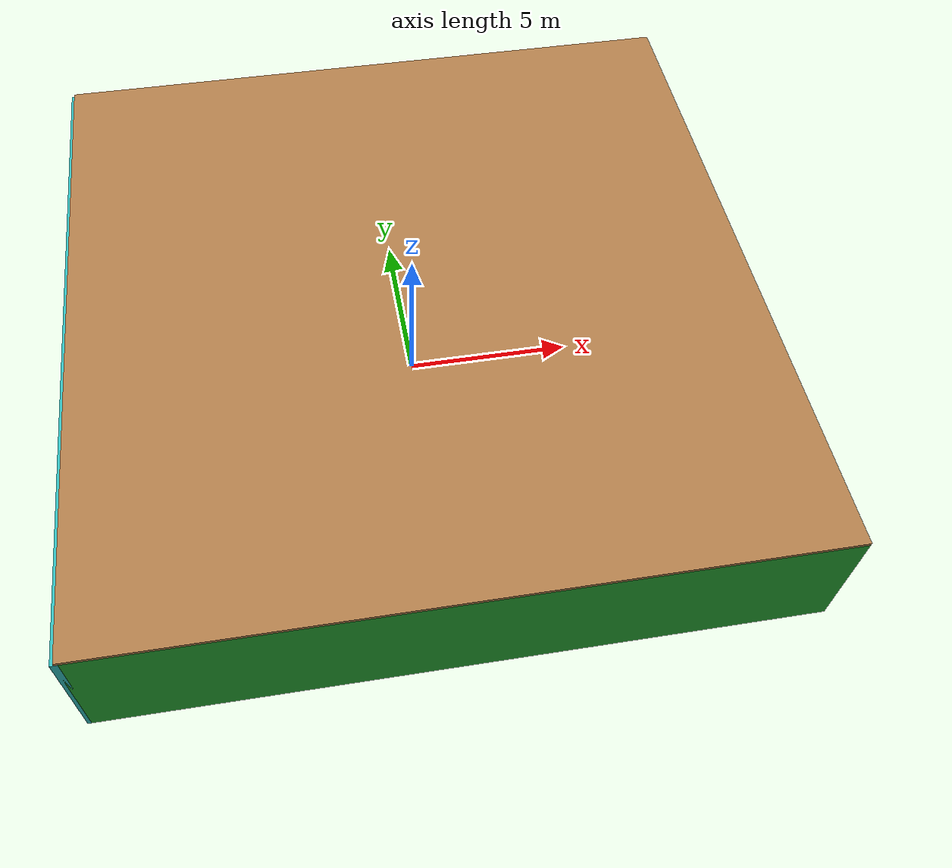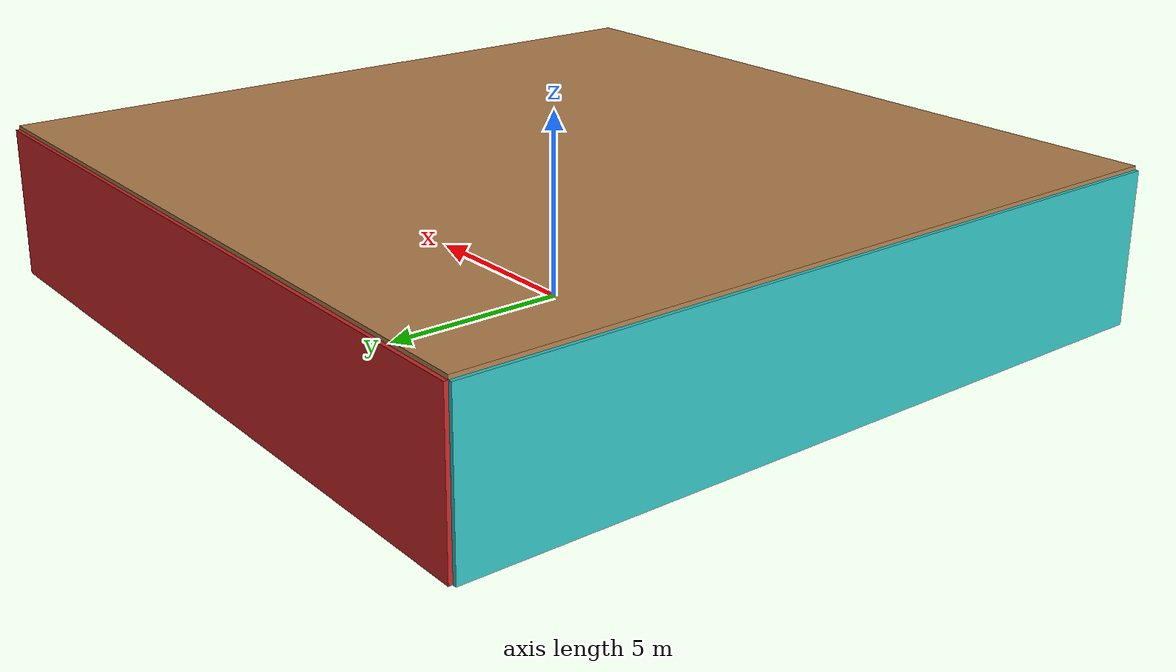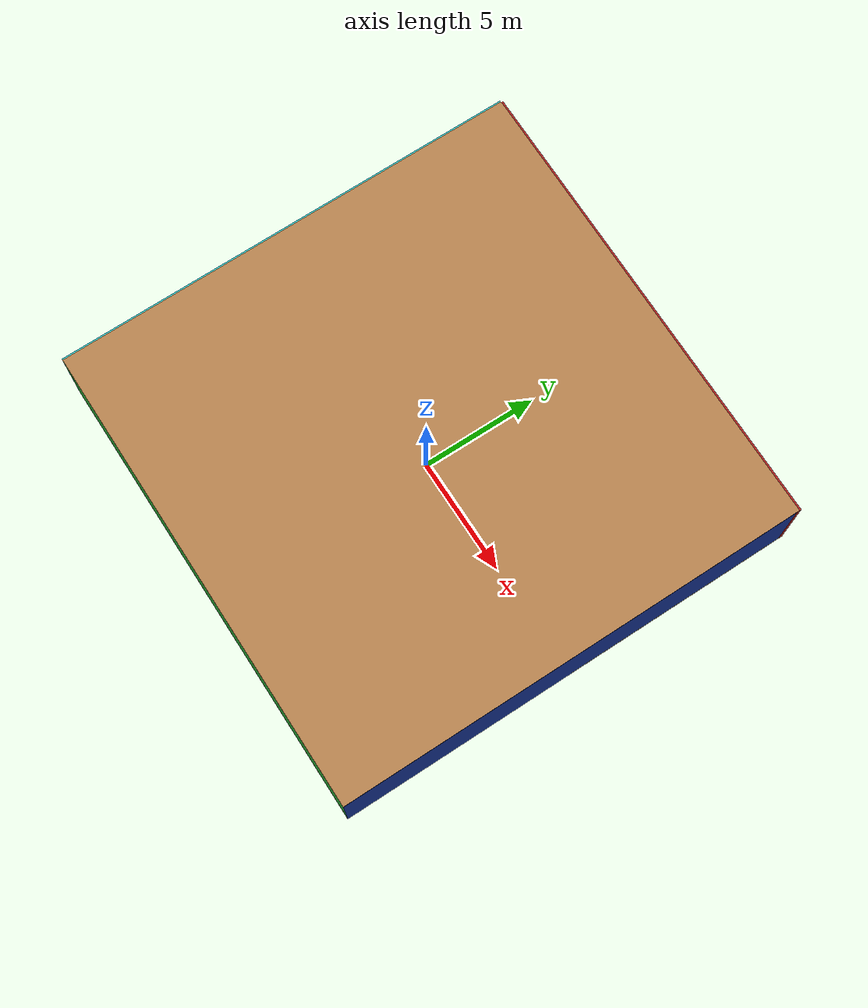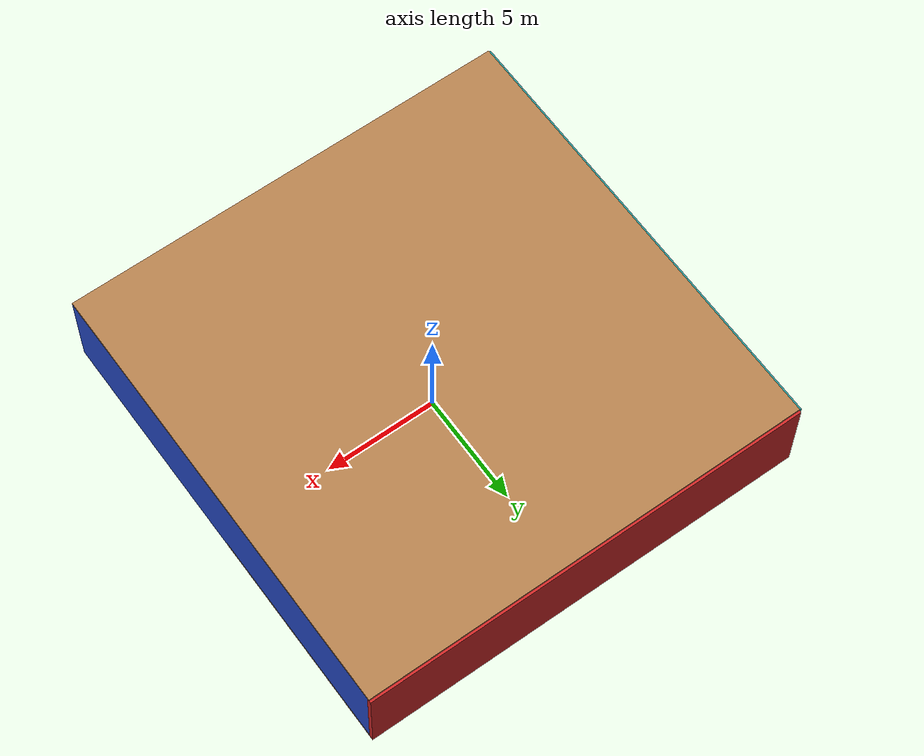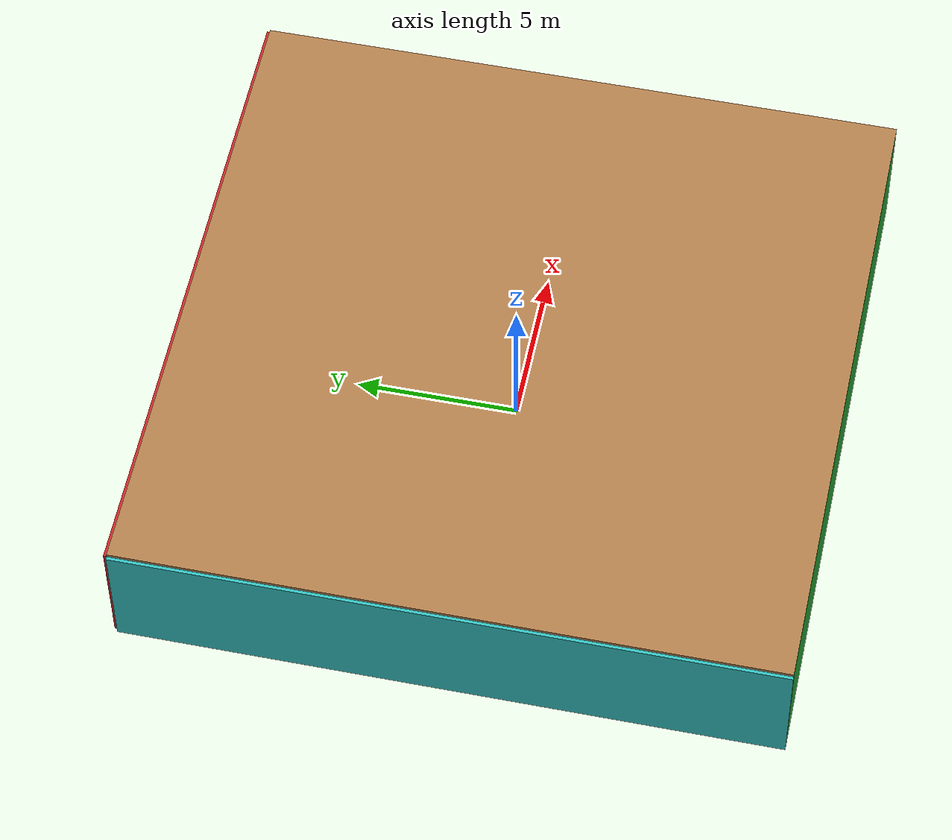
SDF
<sdf version="1.4">
 <world name="default">
  <physics type="ode">
   <max_step_size>0.001</max_step_size>
   <real_time_factor>1</real_time_factor>
   <real_time_update_rate>1000</real_time_update_rate>
   <gravity>0 0 -9.8</gravity>
  </physics>
  <scene><ambient>0.4 0.4 0.4 1</ambient><background>0.7 0.7 0.7 1</background><shadows>1</shadows></scene>
  <model name="Surrounding">
   <static>1</static>
   <link name="Ceiling">
    <collision name="Ceiling_Collision"><geometry><box><size>20 20 0.1</size></box></geometry></collision>
    <visual name="Ceiling_Visual">
     <geometry><box><size>20 20 0.1</size></box></geometry>
     <material>
      <script><uri>file://media/materials/scripts/gazebo.material</uri><name>Gazebo/WoodPallet</name></script>
     </material>
    </visual>
    <pose>0 0 4.05 0 0 0</pose>
   </link>
   <link name="Wall_South">
    <collision name="Wall_South_Collision">
     <geometry><box><size>20 0 4</size></box></geometry>
     <pose>0 0 2 0 -0 0</pose>
    </collision>
    <visual name="Wall_South_Visual">
     <pose>0 0 2 0 -0 0</pose>
     <geometry><box><size>20 0 4</size></box></geometry>
     <material>
      <script><uri>file://media/materials/scripts/gazebo.material</uri><name>Gazebo/GreenGlow</name></script>
     </material>
    </visual>
    <velocity_decay><linear>0</linear><angular>0</angular></velocity_decay>
    <pose>0 -10 0 0 -0 0</pose>
   </link>
   <link name="Wall_East">
    <collision name="Wall_21_Collision">
     <geometry><box><size>20 0 4</size></box></geometry>
     <pose>0 0 2 0 -0 0</pose>
    </collision>
    <visual name="Wall_21_Visual">
     <pose>0 0 2 0 -0 0</pose>
     <geometry><box><size>20 0 4</size></box></geometry>
     <material>
      <script><uri>file://media/materials/scripts/gazebo.material</uri><name>Gazebo/Blue</name></script>
     </material>
    </visual>
    <velocity_decay><linear>0</linear><angular>0</angular></velocity_decay>
    <pose>10 0 0 0 -0 1.5708</pose>
   </link>
   <link name="Wall_North">
    <collision name="Wall_22_Collision">
     <geometry><box><size>20 0.2 4</size></box></geometry>
     <pose>0 0 2 0 -0 0</pose>
    </collision>
    <visual name="Wall_22_Visual">
     <pose>0 0 2 0 -0 0</pose>
     <geometry><box><size>20 0.2 4</size></box></geometry>
     <material>
      <script><uri>file://media/materials/scripts/gazebo.material</uri><name>Gazebo/RedBright</name></script>
     </material>
    </visual>
    <velocity_decay><linear>0</linear><angular>0</angular></velocity_decay>
    <pose>0 10 0 0 -0 0</pose>
   </link>
   <link name="Wall_West">
    <collision name="Wall_23_Collision">
     <geometry><box><size>20 0.2 4</size></box></geometry>
     <pose>0 0 2 0 -0 0</pose>
    </collision>
    <visual name="Wall_23_Visual">
     <pose>0 0 2 0 -0 0</pose>
     <geometry><box><size>20 0.2 4</size></box></geometry>
     <material>
      <script><uri>file://media/materials/scripts/gazebo.material</uri><name>Gazebo/TurquoiseGlow</name></script>
     </material>
    </visual>
    <velocity_decay><linear>0</linear><angular>0</angular></velocity_decay>
    <pose>-10 0 0 0 0 -1.5708</pose>
   </link>
   <link name="Ground_link">
    <collision name="collision">
     <pose>0 0 .05 0 -0 0</pose>
     <geometry><box><size>20 20 0.1</size></box></geometry>
    </collision>
    <visual name="visual">
     <pose>0 0 .05 0 -0 0</pose>
     <geometry><box><size>20 20 0.1</size></box></geometry>
     <material>
      <script><uri>file://media/materials/scripts/gazebo.material</uri><name>Gazebo/Wood</name></script>
     </material>
    </visual>
   </link>
   <static>1</static>
  </model>
  <spherical_coordinates>
   <surface_model>EARTH_WGS84</surface_model>
   <latitude_deg>0</latitude_deg>
   <longitude_deg>0</longitude_deg>
   <elevation>0</elevation>
   <heading_deg>0</heading_deg>
  </spherical_coordinates>
  <light name="lightball_0" type="diffuse">
   <diffuse>0.8 0.8 0.8 1</diffuse>
   <specular>0.2 0.2 0.2 1</specular>
   <attenuation>
    <range>100</range>
    <constant>0.7</constant>
    <linear>0.01</linear>
    <quadratic>0.001</quadratic>
   </attenuation>
   <direction>-0.5 0.1 -0.9</direction>
   <pose>-9.92123071622 -0.13049234117 1.14473840753 0 0 0</pose>
  </light>
  <light name="lightball_1" type="diffuse">
   <diffuse>0.8 0.8 0.8 1</diffuse>
   <specular>0.2 0.2 0.2 1</specular>
   <attenuation>
    <range>100</range>
    <constant>0.7</constant>
    <linear>0.01</linear>
    <quadratic>0.001</quadratic>
   </attenuation>
   <direction>-0.5 0.1 -0.9</direction>
   <pose>-2.10224550437 -3.07381262814 1.92396213751 0 0 0</pose>
  </light>
  <light name="lightball_2" type="diffuse">
   <diffuse>0.8 0.8 0.8 1</diffuse>
   <specular>0.2 0.2 0.2 1</specular>
   <attenuation>
    <range>100</range>
    <constant>0.7</constant>
    <linear>0.01</linear>
    <quadratic>0.001</quadratic>
   </attenuation>
   <direction>-0.5 0.1 -0.9</direction>
   <pose>5.57946278457 -1.65649161096 2.46281136139 0 0 0</pose>
  </light>
  <light name="lightball_3" type="diffuse">
   <diffuse>0.8 0.8 0.8 1</diffuse>
   <specular>0.2 0.2 0.2 1</specular>
   <attenuation>
    <range>100</range>
    <constant>0.7</constant>
    <linear>0.01</linear>
    <quadratic>0.001</quadratic>
   </attenuation>
   <direction>-0.5 0.1 -0.9</direction>
   <pose>-9.86557273087 -7.44102615686 3.25372620985 0 0 0</pose>
  </light>
  <light name="lightball_4" type="diffuse">
   <diffuse>0.8 0.8 0.8 1</diffuse>
   <specular>0.2 0.2 0.2 1</specular>
   <attenuation>
    <range>100</range>
    <constant>0.7</constant>
    <linear>0.01</linear>
    <quadratic>0.001</quadratic>
   </attenuation>
   <direction>-0.5 0.1 -0.9</direction>
   <pose>-7.06744482187 -8.75103539131 1.86604029868 0 0 0</pose>
  </light>
  <light name="lightball_5" type="diffuse">
   <diffuse>0.8 0.8 0.8 1</diffuse>
   <specular>0.2 0.2 0.2 1</specular>
   <attenuation>
    <range>100</range>
    <constant>0.7</constant>
    <linear>0.01</linear>
    <quadratic>0.001</quadratic>
   </attenuation>
   <direction>-0.5 0.1 -0.9</direction>
   <pose>5.67608926996 5.18737458799 3.50181620465 0 0 0</pose>
  </light>
  <light name="lightball_6" type="diffuse">
   <diffuse>0.8 0.8 0.8 1</diffuse>
   <specular>0.2 0.2 0.2 1</specular>
   <attenuation>
    <range>100</range>
    <constant>0.7</constant>
    <linear>0.01</linear>
    <quadratic>0.001</quadratic>
   </attenuation>
   <direction>-0.5 0.1 -0.9</direction>
   <pose>0.951080659186 -8.77843440849 3.69506391399 0 0 0</pose>
  </light>
  <light name="lightball_7" type="diffuse">
   <diffuse>0.8 0.8 0.8 1</diffuse>
   <specular>0.2 0.2 0.2 1</specular>
   <attenuation>
    <range>100</range>
    <constant>0.7</constant>
    <linear>0.01</linear>
    <quadratic>0.001</quadratic>
   </attenuation>
   <direction>-0.5 0.1 -0.9</direction>
   <pose>-9.02401686456 -6.49323832827 1.82080944886 0 0 0</pose>
  </light>
  <light name="lightball_8" type="diffuse">
   <diffuse>0.8 0.8 0.8 1</diffuse>
   <specular>0.2 0.2 0.2 1</specular>
   <attenuation>
    <range>100</range>
    <constant>0.7</constant>
    <linear>0.01</linear>
    <quadratic>0.001</quadratic>
   </attenuation>
   <direction>-0.5 0.1 -0.9</direction>
   <pose>-9.47546874047 6.69240354108 0.637552723722 0 0 0</pose>
  </light>
  <light name="lightball_9" type="diffuse">
   <diffuse>0.8 0.8 0.8 1</diffuse>
   <specular>0.2 0.2 0.2 1</specular>
   <attenuation>
    <range>100</range>
    <constant>0.7</constant>
    <linear>0.01</linear>
    <quadratic>0.001</quadratic>
   </attenuation>
   <direction>-0.5 0.1 -0.9</direction>
   <pose>7.33728424957 -6.49381477794 3.83453737574 0 0 0</pose>
  </light>
  <light name="lightball_10" type="diffuse">
   <diffuse>0.8 0.8 0.8 1</diffuse>
   <specular>0.2 0.2 0.2 1</specular>
   <attenuation>
    <range>100</range>
    <constant>0.7</constant>
    <linear>0.01</linear>
    <quadratic>0.001</quadratic>
   </attenuation>
   <direction>-0.5 0.1 -0.9</direction>
   <pose>-0.68948403953 -8.22341948356 2.51918596307 0 0 0</pose>
  </light>
  <include><uri>model://table</uri><pose>-6.85202986284 -8.01586004801 0 0 0 2.78491388885</pose></include>
  <include><uri>model://cabinet</uri><pose>-3.80207432705 -7.72443747731 0 0 0 1.49398521687</pose></include>
  <include><uri>model://table</uri><pose>-4.56024921128 -3.51540371396 0 0 0 0.059162557432</pose></include>
  <include>
   <uri>model://textured_shapes</uri>
   <pose>0.93034670774 -1.56619604816 0 0 0 1.31169056558</pose>
  </include>
  <include>
   <uri>model://robocup_3Dsim_goal</uri>
   <pose>7.73585754941 -1.54532465265 0 0 0 3.04154679133</pose>
  </include>
  <include>
   <uri>model://textured_shapes</uri>
   <pose>8.17667506978 4.92671105286 0 0 0 0.00226090800069</pose>
  </include>
 </world>
</sdf>

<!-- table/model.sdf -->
<sdf version="1.5">
  <model name="table">
    <static>true</static>
    <link name="link">
      <collision name="surface">
        <pose>0 0 1.0 0 0 0</pose>
        <geometry>
          <box>
            <size>1.5 0.8 0.03</size>
          </box>
        </geometry>
        <surface>
          <friction>
            <ode>
              <mu>0.6</mu>
              <mu2>0.6</mu2>
            </ode>
          </friction>
        </surface>
      </collision>
      <visual name="visual1">
        <pose>0 0 1.0 0 0 0</pose>
        <geometry>
          <box>
            <size>1.5 0.8 0.03</size>
          </box>
        </geometry>
        <material>
          <script>
            <uri>model://media/materials/scripts/gazebo.material</uri>
            <name>Gazebo/Wood</name>
          </script>
        </material>
      </visual>
      <collision name="front_left_leg">
        <pose>0.68 0.38 0.5 0 0 0</pose>
        <geometry>
          <cylinder>
            <radius>0.02</radius>
            <length>1.0</length>
          </cylinder>
        </geometry>
      </collision>
      <visual name="front_left_leg">
        <pose>0.68 0.38 0.5 0 0 0</pose>
        <geometry>
          <cylinder>
            <radius>0.02</radius>
            <length>1.0</length>
          </cylinder>
        </geometry>
        <material>
          <script>
            <uri>model://media/materials/scripts/gazebo.material</uri>
            <name>Gazebo/Grey</name>
          </script>
        </material>
      </visual>
      <collision name="front_right_leg">
        <pose>0.68 -0.38 0.5 0 0 0</pose>
        <geometry>
          <cylinder>
            <radius>0.02</radius>
            <length>1.0</length>
          </cylinder>
        </geometry>
      </collision>
      <visual name="front_right_leg">
        <pose>0.68 -0.38 0.5 0 0 0</pose>
        <geometry>
          <cylinder>
            <radius>0.02</radius>
            <length>1.0</length>
          </cylinder>
        </geometry>
        <material>
          <script>
            <uri>model://media/materials/scripts/gazebo.material</uri>
            <name>Gazebo/Grey</name>
          </script>
        </material>
      </visual>
      <collision name="back_right_leg">
        <pose>-0.68 -0.38 0.5 0 0 0</pose>
        <geometry>
          <cylinder>
            <radius>0.02</radius>
            <length>1.0</length>
          </cylinder>
        </geometry>
      </collision>
      <visual name="back_right_leg">
        <pose>-0.68 -0.38 0.5 0 0 0</pose>
        <geometry>
          <cylinder>
            <radius>0.02</radius>
            <length>1.0</length>
          </cylinder>
        </geometry>
        <material>
          <script>
            <uri>model://media/materials/scripts/gazebo.material</uri>
            <name>Gazebo/Grey</name>
          </script>
        </material>
      </visual>
      <collision name="back_left_leg">
        <pose>-0.68 0.38 0.5 0 0 0</pose>
        <geometry>
          <cylinder>
            <radius>0.02</radius>
            <length>1.0</length>
          </cylinder>
        </geometry>
      </collision>
      <visual name="back_left_leg">
        <pose>-0.68 0.38 0.5 0 0 0</pose>
        <geometry>
          <cylinder>
            <radius>0.02</radius>
            <length>1.0</length>
          </cylinder>
        </geometry>
        <material>
          <script>
            <uri>model://media/materials/scripts/gazebo.material</uri>
            <name>Gazebo/Grey</name>
          </script>
        </material>
      </visual>
    </link>
  </model>
</sdf>

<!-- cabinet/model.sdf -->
<sdf version="1.5">
  <model name="cabinet">
    <static>true</static>
    <link name="cabinet_bottom_plate">
      <inertial>
        <pose>0 0 -1 0 0 0</pose>
        <inertia>
          <ixx>2.050000</ixx>
          <ixy>0</ixy>
          <ixz>0</ixz>
          <iyy>2.050000</iyy>
          <iyz>0</iyz>
          <izz>2.050000</izz>
        </inertia>
        <mass>25.000000</mass>
      </inertial>
      <collision name="cabinet_bottom_plate_geom">
        <pose>0 0 0.010000 0 0 0</pose>
        <geometry>
          <box>
            <size>0.450000 0.450000 0.020000</size>
          </box>
        </geometry>
      </collision>
      <visual name="cabinet_bottom_plate_geom_visual">
        <pose>0 0 0.010000 0 0 0</pose>
        <geometry>
          <box>
            <size>0.450000 0.450000 0.020000</size>
          </box>
        </geometry>
        <material>
          <script>
            <uri>model://media/materials/scripts/gazebo.material</uri>
            <name>Gazebo/Wood</name>
          </script>
        </material>
      </visual>
      <collision name="cabinet_bottom_plate_geom_cabinet_back_plate">
        <pose>0.235000 0 0.510000 0 0 0</pose>
        <geometry>
          <box>
            <size>0.020000 0.450000 1.020000</size>
          </box>
        </geometry>
      </collision>
      <visual name="cabinet_bottom_plate_geom_cabinet_back_plate_visual">
        <pose>0.235000 0 0.510000 0 0 0</pose>
        <geometry>
          <box>
            <size>0.020000 0.450000 1.020000</size>
          </box>
        </geometry>
        <material>
          <script>
            <uri>model://media/materials/scripts/gazebo.material</uri>
            <name>Gazebo/Wood</name>
          </script>
        </material>
      </visual>
      <collision name="cabinet_bottom_plate_geom_cabinet_left_plate">
        <pose>0 0.235000 0.510000 0 0 0</pose>
        <geometry>
          <box>
            <size>0.450000 0.020000 1.020000</size>
          </box>
        </geometry>
      </collision>
      <visual name="cabinet_bottom_plate_geom_cabinet_left_plate_visual">
        <pose>0 0.235000 0.510000 0 0 0</pose>
        <geometry>
          <box>
            <size>0.450000 0.020000 1.020000</size>
          </box>
        </geometry>
        <material>
          <script>
            <uri>model://media/materials/scripts/gazebo.material</uri>
            <name>Gazebo/Wood</name>
          </script>
        </material>
      </visual>
      <collision name="cabinet_bottom_plate_geom_cabinet_middle_plate">
        <pose>0 0 0.510000 0 0 0</pose>
        <geometry>
          <box>
            <size>0.450000 0.450000 0.020000</size>
          </box>
        </geometry>
      </collision>
      <visual name="cabinet_bottom_plate_geom_cabinet_middle_plate_visual">
        <pose>0 0 0.510000 0 0 0</pose>
        <geometry>
          <box>
            <size>0.450000 0.450000 0.020000</size>
          </box>
        </geometry>
        <material>
          <script>
            <uri>model://media/materials/scripts/gazebo.material</uri>
            <name>Gazebo/Wood</name>
          </script>
        </material>
      </visual>
      <collision name="cabinet_bottom_plate_geom_cabinet_right_plate">
        <pose>0 -0.235000 0.510000 0 0 0</pose>
        <geometry>
          <box>
            <size>0.450000 0.020000 1.020000</size>
          </box>
        </geometry>
      </collision>
      <visual name="cabinet_bottom_plate_geom_cabinet_right_plate_visual">
        <pose>0 -0.235000 0.510000 0 0 0</pose>
        <geometry>
          <box>
            <size>0.450000 0.020000 1.020000</size>
          </box>
        </geometry>
        <material>
          <script>
            <uri>model://media/materials/scripts/gazebo.material</uri>
            <name>Gazebo/Wood</name>
          </script>
        </material>
      </visual>
      <collision name="cabinet_bottom_plate_geom_cabinet_top_plate">
        <pose>0 0 1.010000 0 0 0</pose>
        <geometry>
          <box>
            <size>0.450000 0.450000 0.020000</size>
          </box>
        </geometry>
      </collision>
      <visual name="cabinet_bottom_plate_geom_cabinet_top_plate_visual">
        <pose>0 0 1.010000 0 0 0</pose>
        <geometry>
          <box>
            <size>0.450000 0.450000 0.020000</size>
          </box>
        </geometry>
        <material>
          <script>
            <uri>model://media/materials/scripts/gazebo.material</uri>
            <name>Gazebo/Wood</name>
          </script>
        </material>
      </visual>
    </link>
  </model>
</sdf>

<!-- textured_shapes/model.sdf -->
<sdf version="1.6">
  <model name="textured_shapes">
    <pose>0 0 0.5 0 0 0</pose>
    <link name="box">
      <pose>0 -1.5 0 0 0 0</pose>
      <collision name="collision">
        <geometry>
          <box>
            <size>1 1 1</size>
          </box>
        </geometry>
      </collision>
      <visual name="visual">
        <geometry>
          <box>
            <size>1 1 1</size>
          </box>
        </geometry>
        <material>
          <script>
            <uri>model://../model_source/models/textured_shapes/materials/scripts</uri>
            <uri>model://../model_source/models/textured_shapes/materials/textures</uri>
            <name>TexturedShape/Squares</name>
          </script>
        </material>
      </visual>
    </link>
    <link name="sphere">
      <collision name="collision">
        <geometry>
          <sphere>
            <radius>0.5</radius>
          </sphere>
        </geometry>
      </collision>
      <visual name="visual">
        <geometry>
          <sphere>
            <radius>0.5</radius>
          </sphere>
        </geometry>
        <material>
          <script>
            <uri>model://../model_source/models/textured_shapes/materials/scripts</uri>
            <uri>model://../model_source/models/textured_shapes/materials/textures</uri>
            <name>TexturedShape/Squares</name>
          </script>
        </material>
      </visual>
    </link>
    <link name="cylinder">
      <pose>0 1.5 0 0 0 0</pose>
      <collision name="collision">
        <geometry>
          <cylinder>
            <radius>0.5</radius>
            <length>1</length>
          </cylinder>
        </geometry>
      </collision>
      <visual name="visual">
        <geometry>
          <cylinder>
            <radius>0.5</radius>
            <length>1</length>
          </cylinder>
        </geometry>
        <material>
          <script>
            <uri>model://../model_source/models/textured_shapes/materials/scripts</uri>
            <uri>model://../model_source/models/textured_shapes/materials/textures</uri>
            <name>TexturedShape/Squares</name>
          </script>
        </material>
      </visual>
    </link>
  </model>
</sdf>

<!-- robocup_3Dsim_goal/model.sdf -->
<sdf version="1.5">
  <model name="robocup_3d_goal">
    <static>true</static>
    <link name="left_post">
      <pose>0 1.05 0.45 0 0 0</pose>
      <collision name="collision">
        <geometry>
          <cylinder>
            <radius>0.05</radius>
            <length>0.9</length>
          </cylinder>
        </geometry>
      </collision>
      <visual name="visual">
        <geometry>
          <cylinder>
            <radius>0.05</radius>
            <length>0.9</length>
          </cylinder>
        </geometry>
        <material>
          <script>
            <uri>file://media/materials/scripts/gazebo.material</uri>
            <name>Gazebo/ZincYellow</name>
          </script>
        </material>
      </visual>
    </link>
    <link name="left_support_horiz_lower">
      <pose>0.30 1.05 0.01 0 0 0</pose>
      <collision name="collision">
        <geometry>
          <box>
            <size>0.50 0.02 0.02</size>
          </box>
        </geometry>
      </collision>
      <visual name="visual">
        <geometry>
          <box>
            <size>0.50 0.02 0.02</size>
          </box>
        </geometry>
        <material>
          <script>
            <uri>file://media/materials/scripts/gazebo.material</uri>
            <name>Gazebo/White</name>
          </script>
        </material>
      </visual>
    </link>
    <link name="left_support_horiz_upper">
      <pose>0.30 1.05 0.79 0 0 0</pose>
      <collision name="collision">
        <geometry>
          <box>
            <size>0.50 0.02 0.02</size>
          </box>
        </geometry>
      </collision>
      <visual name="visual">
        <geometry>
          <box>
            <size>0.50 0.02 0.02</size>
          </box>
        </geometry>
        <material>
          <script>
            <uri>file://media/materials/scripts/gazebo.material</uri>
            <name>Gazebo/White</name>
          </script>
        </material>
      </visual>
    </link>
    <link name="left_support_vertical">
      <pose>0.56 1.05 0.4 0 1.5708 0</pose>
      <collision name="collision">
        <geometry>
          <box>
            <size>0.80 0.02 0.02</size>
          </box>
        </geometry>
      </collision>
      <visual name="visual">
        <geometry>
          <box>
            <size>0.80 0.02 0.02</size>
          </box>
        </geometry>
        <material>
          <script>
            <uri>file://media/materials/scripts/gazebo.material</uri>
            <name>Gazebo/White</name>
          </script>
        </material>
      </visual>
    </link>
    <link name="right_support_horiz_lower">
      <pose>0.30 -1.05 0.01 0 0 0</pose>
      <collision name="collision">
        <geometry>
          <box>
            <size>0.50 0.02 0.02</size>
          </box>
        </geometry>
      </collision>
      <visual name="visual">
        <geometry>
          <box>
            <size>0.50 0.02 0.02</size>
          </box>
        </geometry>
        <material>
          <script>
            <uri>file://media/materials/scripts/gazebo.material</uri>
            <name>Gazebo/White</name>
          </script>
        </material>
      </visual>
    </link>
    <link name="right_support_horiz_upper">
      <pose>0.30 -1.05 0.79 0 0 0</pose>
      <collision name="collision">
        <geometry>
          <box>
            <size>0.50 0.02 0.02</size>
          </box>
        </geometry>
      </collision>
      <visual name="visual">
        <geometry>
          <box>
            <size>0.50 0.02 0.02</size>
          </box>
        </geometry>
        <material>
          <script>
            <uri>file://media/materials/scripts/gazebo.material</uri>
            <name>Gazebo/White</name>
          </script>
        </material>
      </visual>
    </link>
    <link name="right_support_vertical">
      <pose>0.56 -1.05 0.4 0 1.5708 0</pose>
      <collision name="collision">
        <geometry>
          <box>
            <size>0.80 0.02 0.02</size>
          </box>
        </geometry>
      </collision>
      <visual name="visual">
        <geometry>
          <box>
            <size>0.80 0.02 0.02</size>
          </box>
        </geometry>
        <material>
          <script>
            <uri>file://media/materials/scripts/gazebo.material</uri>
            <name>Gazebo/White</name>
          </script>
        </material>
      </visual>
    </link>
    <link name="center_support_horiz_lower">
      <pose>0.56 0 0.01 0 1.5708 0</pose>
      <collision name="collision">
        <geometry>
          <box>
            <size>0.02 2.08 0.02</size>
          </box>
        </geometry>
      </collision>
      <visual name="visual">
        <geometry>
          <box>
            <size>0.02 2.08 0.02</size>
          </box>
        </geometry>
        <material>
          <script>
            <uri>file://media/materials/scripts/gazebo.material</uri>
            <name>Gazebo/White</name>
          </script>
        </material>
      </visual>
    </link>
    <link name="center_support_horiz_upper">
      <pose>0.56 0 0.79 0 1.5708 0</pose>
      <collision name="collision">
        <geometry>
          <box>
            <size>0.02 2.08 0.02</size>
          </box>
        </geometry>
      </collision>
      <visual name="visual">
        <geometry>
          <box>
            <size>0.02 2.08 0.02</size>
          </box>
        </geometry>
        <material>
          <script>
            <uri>file://media/materials/scripts/gazebo.material</uri>
            <name>Gazebo/White</name>
          </script>
        </material>
      </visual>
    </link>
    <link name="right_post">
      <pose>0 -1.05 0.45 0 0 0</pose>
      <collision name="collision">
        <geometry>
          <cylinder>
            <radius>0.05</radius>
            <length>0.9</length>
          </cylinder>
        </geometry>
      </collision>
      <visual name="visual">
        <geometry>
          <cylinder>
            <radius>0.05</radius>
            <length>0.9</length>
          </cylinder>
        </geometry>
        <material>
          <script>
            <uri>file://media/materials/scripts/gazebo.material</uri>
            <name>Gazebo/ZincYellow</name>
          </script>
        </material>
      </visual>
    </link>
    <link name="crossbar">
      <pose>0 0 0.85 1.57 1.57 0</pose>
      <collision name="collision">
        <geometry>
          <cylinder>
            <radius>0.05</radius>
            <length>2.0</length>
          </cylinder>
        </geometry>
      </collision>
      <visual name="visual">
        <geometry>
          <cylinder>
            <radius>0.05</radius>
            <length>2.0</length>
          </cylinder>
        </geometry>
        <material>
          <script>
            <uri>file://media/materials/scripts/gazebo.material</uri>
            <name>Gazebo/ZincYellow</name>
          </script>
        </material>
      </visual>
    </link>
    <link name="center_net">
      <pose>0.56 0 0.40 0 0 0</pose>
      <collision name="collision">
        <geometry>
          <box>
            <size>0.01 2.1 0.80</size>
          </box>
        </geometry>
      </collision>
      <visual name="visual">
        <geometry>
          <box>
            <size>0.01 2.1 0.80</size>
          </box>
        </geometry>
        <material>
          <script>
            <uri>model://../model_source/models/robocup09_spl_field/materials/scripts/</uri>
            <uri>model://../model_source/models/robocup09_spl_field/materials/textures/</uri>
            <name>RoboCup/Net</name>
          </script>
        </material>
      </visual>
    </link>
    <link name="left_net">
      <pose>0.30 1.05 0.40 0 0 0</pose>
      <collision name="collision">
        <geometry>
          <box>
            <size>0.50 0.01 0.76</size>
          </box>
        </geometry>
      </collision>
      <visual name="visual">
        <geometry>
          <box>
            <size>0.50 0.01 0.76</size>
          </box>
        </geometry>
        <material>
          <script>
            <uri>model://../model_source/models/robocup09_spl_field/materials/scripts/</uri>
            <uri>model://../model_source/models/robocup09_spl_field/materials/textures/</uri>
            <name>RoboCup/Net</name>
          </script>
        </material>
      </visual>
    </link>
    <link name="right_net">
      <pose>0.30 -1.05 0.40 0 0 0</pose>
      <collision name="collision">
        <geometry>
          <box>
            <size>0.50 0.01 0.76</size>
          </box>
        </geometry>
      </collision>
      <visual name="visual">
        <geometry>
          <box>
            <size>0.50 0.01 0.76</size>
          </box>
        </geometry>
        <material>
          <script>
            <uri>model://../model_source/models/robocup09_spl_field/materials/scripts/</uri>
            <uri>model://../model_source/models/robocup09_spl_field/materials/textures/</uri>
            <name>RoboCup/Net</name>
          </script>
        </material>
      </visual>
    </link>
  </model>
</sdf>
